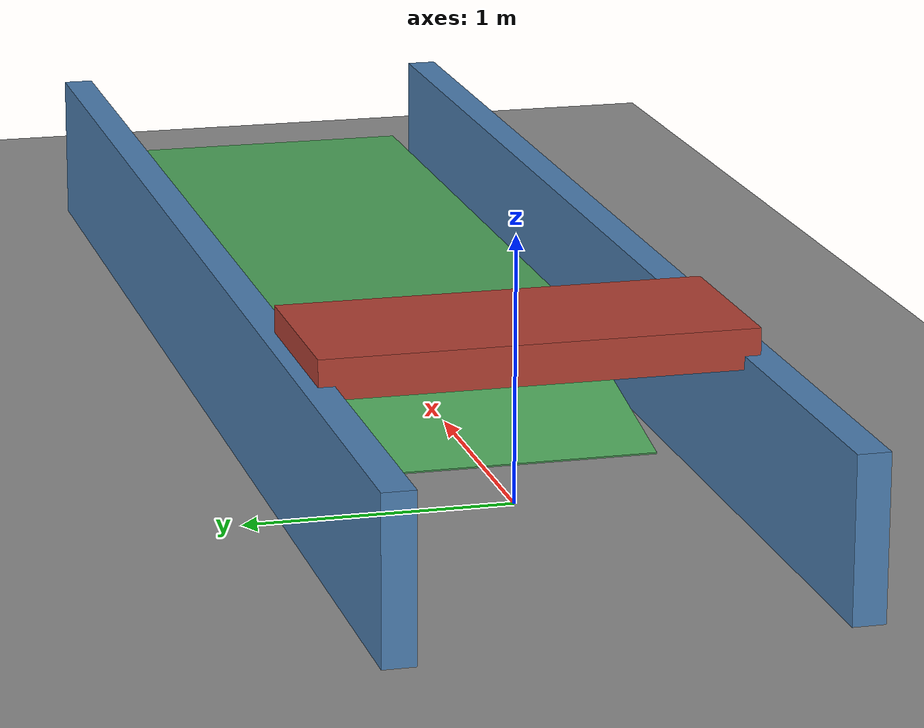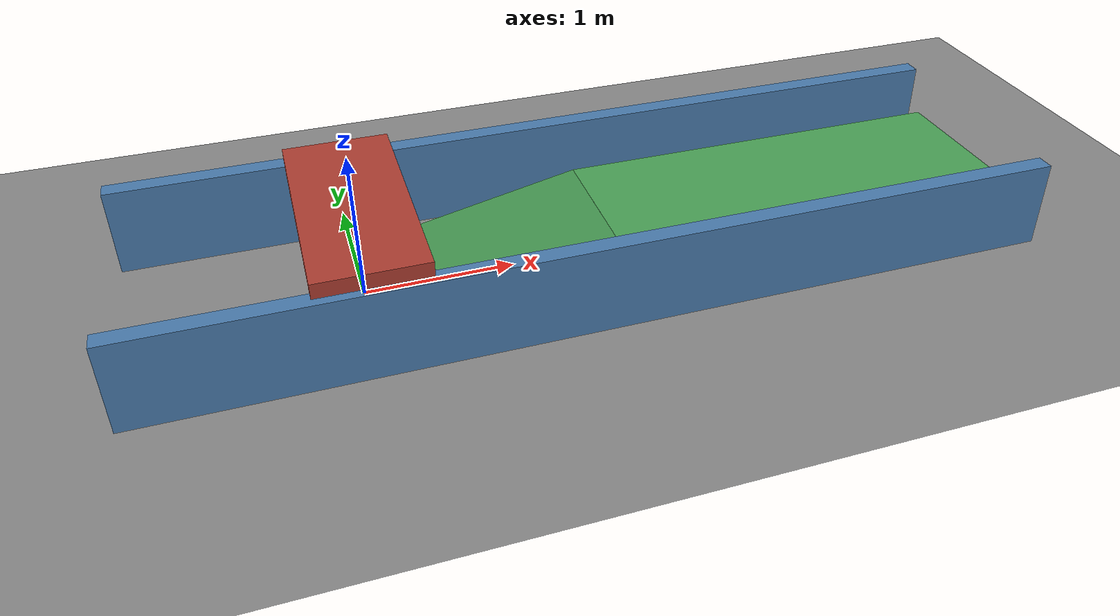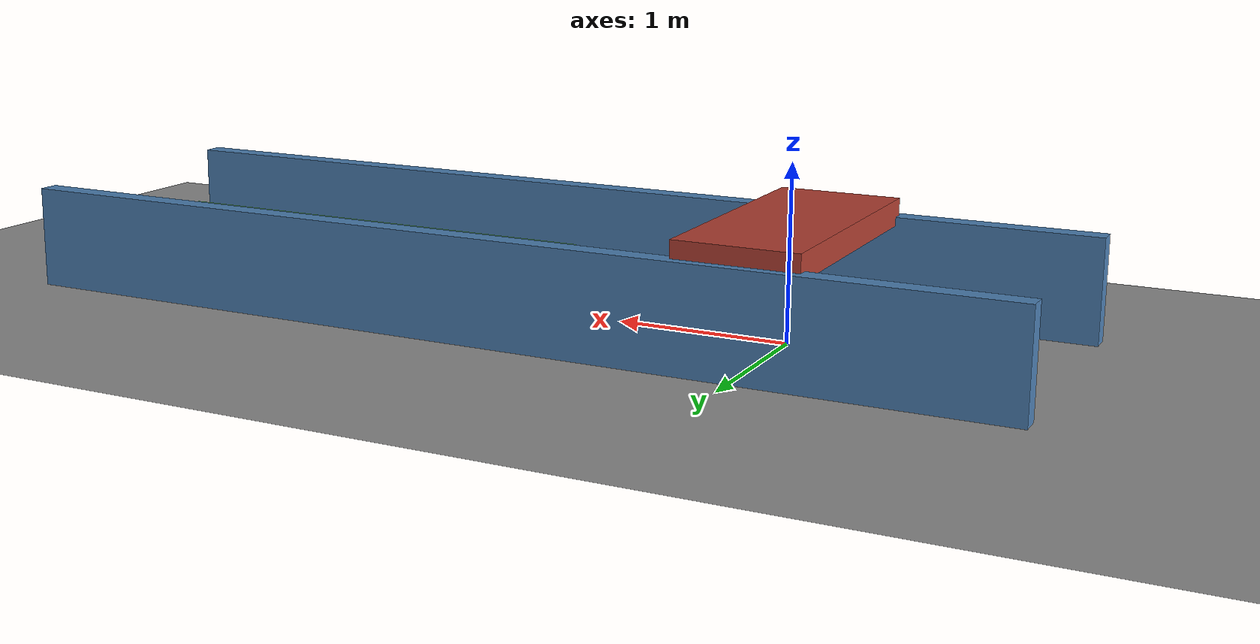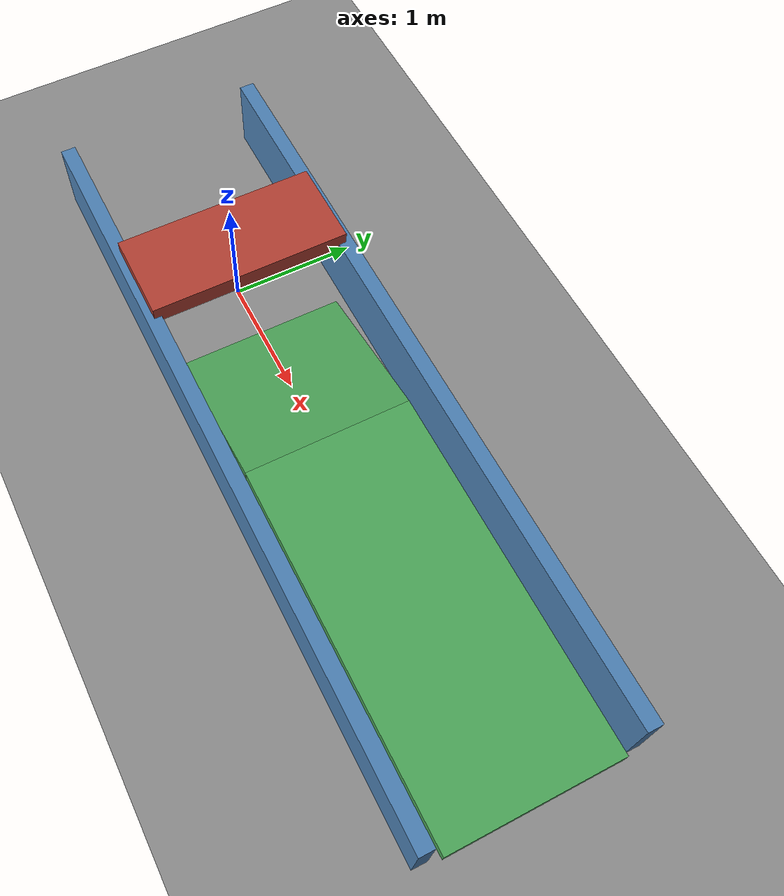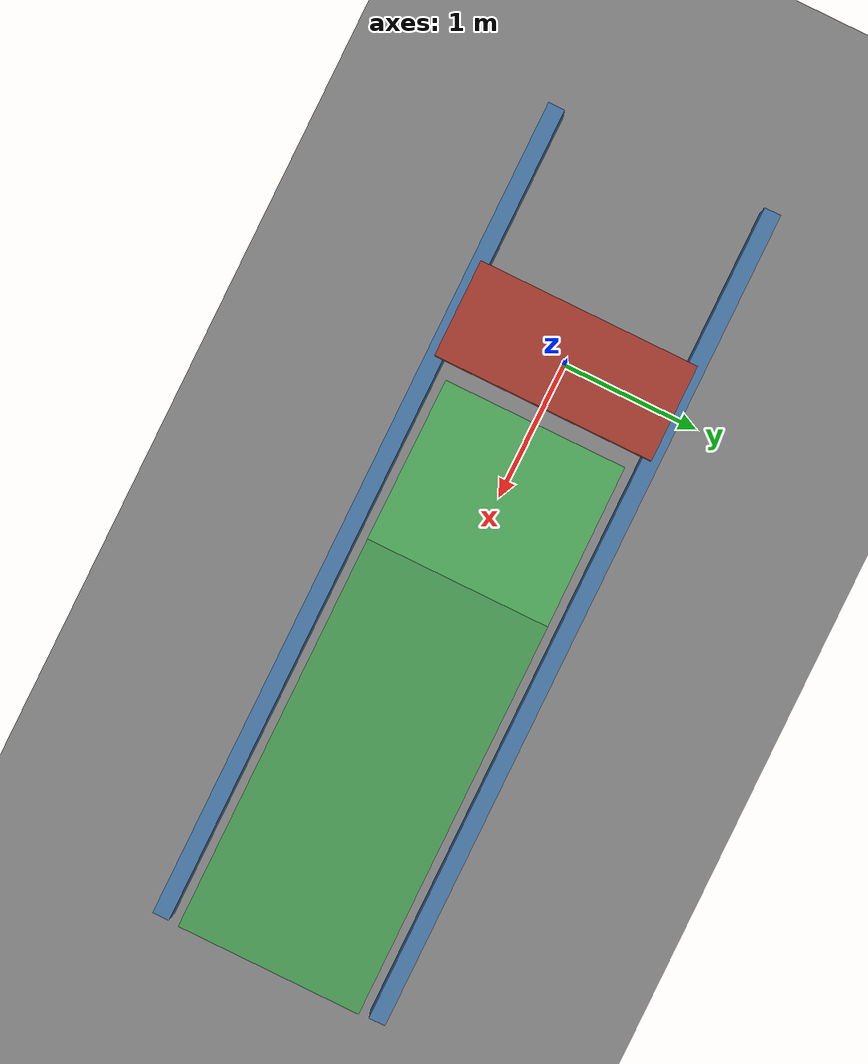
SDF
<?xml version="1.0"?>
<sdf version="1.7">
  <world name="tunnel_ramp_test">
    <plugin filename="gz-sim-physics-system" name="gz::sim::systems::Physics"/>
    <plugin filename="gz-sim-user-commands-system" name="gz::sim::systems::UserCommands"/>
    <plugin filename="gz-sim-scene-broadcaster-system" name="gz::sim::systems::SceneBroadcaster"/>
    <plugin filename="gz-sim-sensors-system" name="gz::sim::systems::Sensors">
      <render_engine>ogre2</render_engine>
    </plugin>
    <plugin filename="gz-sim-imu-system" name="gz::sim::systems::Imu"/>

    <physics name="default_physics" default="0" type="ode">
      <max_step_size>0.001</max_step_size>
      <real_time_factor>1</real_time_factor>
      <real_time_update_rate>1000</real_time_update_rate>
    </physics>

    <scene>
      <ambient>0.45 0.45 0.45 1</ambient>
      <background>0.72 0.78 0.82 1</background>
      <shadows>true</shadows>
    </scene>

    <light name="sun" type="directional">
      <pose>0 0 10 0 0 0</pose>
      <diffuse>0.8 0.8 0.8 1</diffuse>
      <specular>0.2 0.2 0.2 1</specular>
      <direction>-0.5 0.1 -0.9</direction>
      <cast_shadows>true</cast_shadows>
    </light>

    <model name="ground_plane">
      <static>true</static>
      <link name="ground">
        <collision name="collision">
          <geometry><plane><normal>0 0 1</normal><size>20 10</size></plane></geometry>
          <surface><friction><ode><mu>100</mu><mu2>50</mu2></ode></friction></surface>
        </collision>
        <visual name="visual">
          <geometry><plane><normal>0 0 1</normal><size>20 10</size></plane></geometry>
          <material><ambient>0.45 0.45 0.45 1</ambient><diffuse>0.55 0.55 0.55 1</diffuse></material>
        </visual>
      </link>
    </model>

    <!-- The two walls force the global route through the instrumented corridor. -->
    <model name="corridor_walls">
      <static>true</static>
      <link name="left_wall">
        <pose>1.5 0.8 0.3 0 0 0</pose>
        <collision name="collision"><geometry><box><size>6.0 0.12 0.6</size></box></geometry></collision>
        <visual name="visual">
          <geometry><box><size>6.0 0.12 0.6</size></box></geometry>
          <material><ambient>0.2 0.3 0.4 1</ambient><diffuse>0.3 0.5 0.7 1</diffuse></material>
        </visual>
      </link>
      <link name="right_wall">
        <pose>1.5 -0.8 0.3 0 0 0</pose>
        <collision name="collision"><geometry><box><size>6.0 0.12 0.6</size></box></geometry></collision>
        <visual name="visual">
          <geometry><box><size>6.0 0.12 0.6</size></box></geometry>
          <material><ambient>0.2 0.3 0.4 1</ambient><diffuse>0.3 0.5 0.7 1</diffuse></material>
        </visual>
      </link>
    </model>

    <!-- Short tunnel: roof underside is z=0.55 m and length is 0.70 m. -->
    <model name="short_tunnel_roof">
      <static>true</static>
      <pose>0 0 0.625 0 0 0</pose>
      <link name="roof">
        <collision name="collision"><geometry><box><size>0.70 1.60 0.15</size></box></geometry></collision>
        <visual name="visual">
          <geometry><box><size>0.70 1.60 0.15</size></box></geometry>
          <material><ambient>0.45 0.18 0.16 1</ambient><diffuse>0.7 0.25 0.2 1</diffuse></material>
        </visual>
      </link>
    </model>

    <!-- The ramp starts 0.10 m after the tunnel and rises 0.25 m over 1.20 m. -->
    <model name="short_ramp">
      <static>true</static>
      <!-- Center height makes the pitched top face continuous with z=0 and z=0.25. -->
      <pose>1.05 0 0.0857 0 -0.2054 0</pose>
      <link name="ramp">
        <collision name="collision">
          <geometry><box><size>1.225 1.35 0.08</size></box></geometry>
          <surface><friction><ode><mu>100</mu><mu2>50</mu2></ode></friction></surface>
        </collision>
        <visual name="visual">
          <geometry><box><size>1.225 1.35 0.08</size></box></geometry>
          <material><ambient>0.2 0.42 0.24 1</ambient><diffuse>0.3 0.65 0.35 1</diffuse></material>
        </visual>
      </link>
    </model>

    <model name="ramp_platform">
      <static>true</static>
      <!-- The leading edge coincides with the ramp top endpoint. -->
      <pose>3.09147 0 0.20 0 0 0</pose>
      <link name="platform">
        <collision name="collision">
          <geometry><box><size>2.9 1.35 0.10</size></box></geometry>
          <surface><friction><ode><mu>100</mu><mu2>50</mu2></ode></friction></surface>
        </collision>
        <visual name="visual">
          <geometry><box><size>2.9 1.35 0.10</size></box></geometry>
          <material><ambient>0.2 0.42 0.24 1</ambient><diffuse>0.3 0.65 0.35 1</diffuse></material>
        </visual>
      </link>
    </model>

    <gravity>0 0 -9.81</gravity>
  </world>
</sdf>
